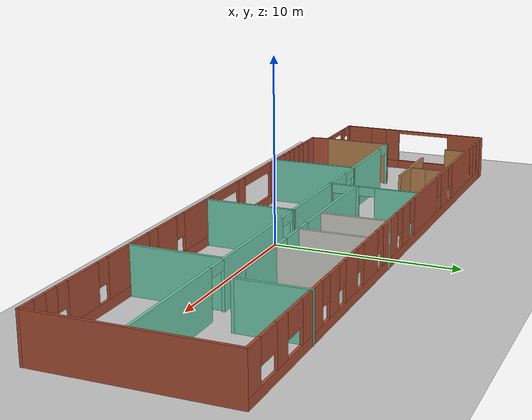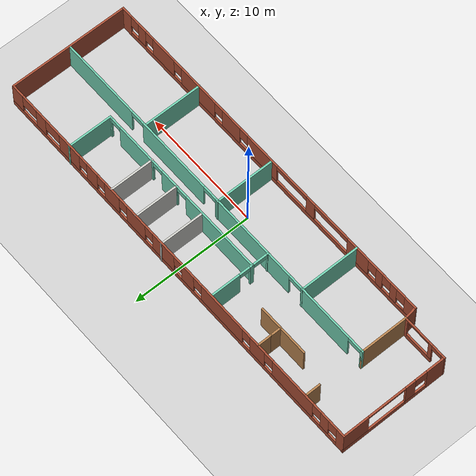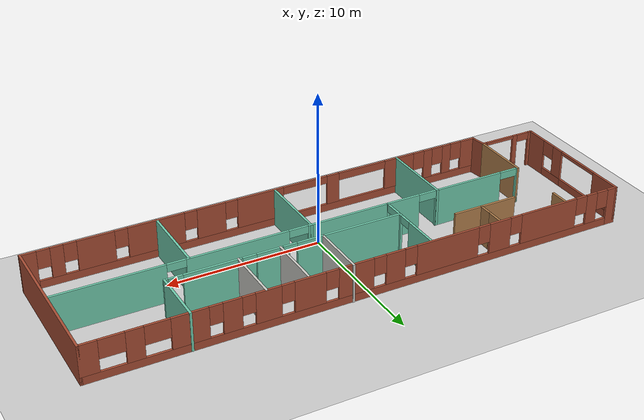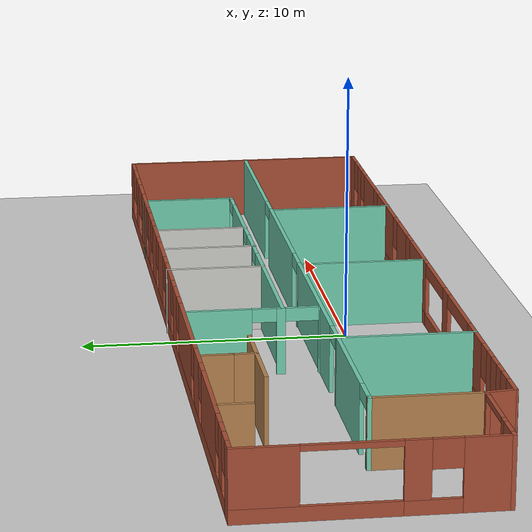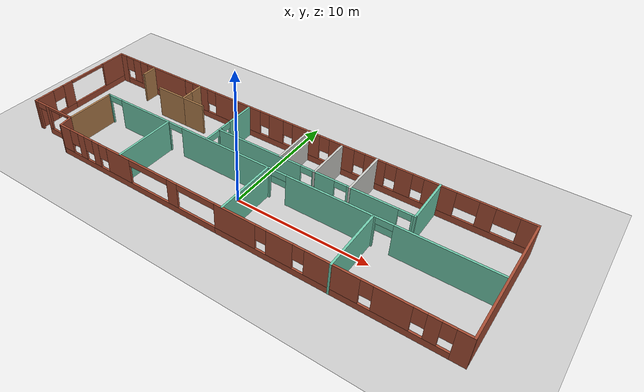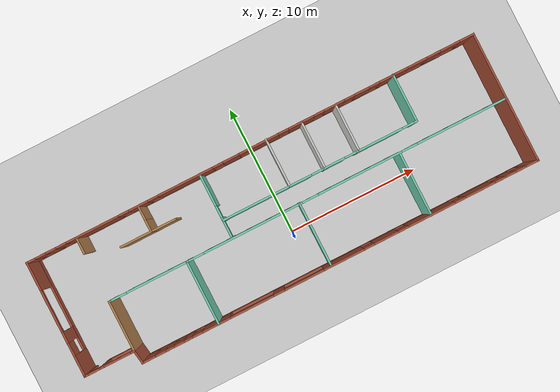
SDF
<sdf version="1.6">
 <world name="default">
  <model name="ground_plane">
   <static>1</static>
   <link name="link">
    <collision name="collision">
     <geometry><plane><normal>0 0 1</normal><size>100 100</size></plane></geometry>
     <surface><friction><ode><mu>100</mu><mu2>50</mu2></ode></friction></surface>
    </collision>
    <visual name="visual">
     <cast_shadows>0</cast_shadows>
     <geometry><plane><normal>0 0 1</normal><size>100 100</size></plane></geometry>
     <material>
      <script><uri>file://media/materials/scripts/gazebo.material</uri><name>Gazebo/Grey</name></script>
     </material>
    </visual>
   </link>
  </model>
  <model name="building_model">
   <pose>0.0184 1.65847 0 0 -0 0</pose>
   <link name="Wall_1">
    <pose>-15.5 -3.93769 0 0 -0 3.14159</pose>
    <visual name="Wall_1_Visual_0">
     <pose>-1.82542 0 1.25 0 -0 0</pose>
     <geometry><box><size>0.349165 0.15 2.5</size></box></geometry>
     <material>
      <script><uri>file://media/materials/scripts/gazebo.material</uri><name>Gazebo/Bricks</name></script>
      <ambient>1 1 1 1</ambient>
     </material>
     <meta><layer>0</layer></meta>
    </visual>
    <collision name="Wall_1_Collision_0">
     <geometry><box><size>0.349165 0.15 2.5</size></box></geometry>
     <pose>-1.82542 0 1.25 0 -0 0</pose>
    </collision>
    <visual name="Wall_1_Visual_1">
     <pose>1.83136 0 1.25 0 -0 0</pose>
     <geometry><box><size>0.337283 0.15 2.5</size></box></geometry>
     <material>
      <script><uri>file://media/materials/scripts/gazebo.material</uri><name>Gazebo/Bricks</name></script>
      <ambient>1 1 1 1</ambient>
     </material>
     <meta><layer>0</layer></meta>
    </visual>
    <collision name="Wall_1_Collision_1">
     <geometry><box><size>0.337283 0.15 2.5</size></box></geometry>
     <pose>1.83136 0 1.25 0 -0 0</pose>
    </collision>
    <visual name="Wall_1_Visual_2">
     <pose>-0.444059 0 0.25 0 -0 0</pose>
     <geometry><box><size>2.41355 0.15 0.5</size></box></geometry>
     <material>
      <script><uri>file://media/materials/scripts/gazebo.material</uri><name>Gazebo/Bricks</name></script>
      <ambient>1 1 1 1</ambient>
     </material>
     <meta><layer>0</layer></meta>
    </visual>
    <collision name="Wall_1_Collision_2">
     <geometry><box><size>2.41355 0.15 0.5</size></box></geometry>
     <pose>-0.444059 0 0.25 0 -0 0</pose>
    </collision>
    <visual name="Wall_1_Visual_3">
     <pose>0.594441 0 1.5 0 -0 0</pose>
     <geometry><box><size>0.336552 0.15 2</size></box></geometry>
     <material>
      <script><uri>file://media/materials/scripts/gazebo.material</uri><name>Gazebo/Bricks</name></script>
      <ambient>1 1 1 1</ambient>
     </material>
     <meta><layer>0</layer></meta>
    </visual>
    <collision name="Wall_1_Collision_3">
     <geometry><box><size>0.336552 0.15 2</size></box></geometry>
     <pose>0.594441 0 1.5 0 -0 0</pose>
    </collision>
    <visual name="Wall_1_Visual_4">
     <pose>1.21272 0 2.25 0 -0 0</pose>
     <geometry><box><size>0.9 0.15 0.5</size></box></geometry>
     <material>
      <script><uri>file://media/materials/scripts/gazebo.material</uri><name>Gazebo/Bricks</name></script>
      <ambient>1 1 1 1</ambient>
     </material>
     <meta><layer>0</layer></meta>
    </visual>
    <collision name="Wall_1_Collision_4">
     <geometry><box><size>0.9 0.15 0.5</size></box></geometry>
     <pose>1.21272 0 2.25 0 -0 0</pose>
    </collision>
    <visual name="Wall_1_Visual_5">
     <pose>-0.612335 0 2.4 0 -0 0</pose>
     <geometry><box><size>2.077 0.15 0.2</size></box></geometry>
     <material>
      <script><uri>file://media/materials/scripts/gazebo.material</uri><name>Gazebo/Bricks</name></script>
      <ambient>1 1 1 1</ambient>
     </material>
     <meta><layer>0</layer></meta>
    </visual>
    <collision name="Wall_1_Collision_5">
     <geometry><box><size>2.077 0.15 0.2</size></box></geometry>
     <pose>-0.612335 0 2.4 0 -0 0</pose>
    </collision>
   </link>
   <link name="Wall_10">
    <pose>1.85 -0.087691 0 0 -0 0</pose>
    <visual name="Wall_10_Visual_0">
     <pose>-15.3838 0 1.25 0 -0 0</pose>
     <geometry><box><size>0.232456 0.15 2.5</size></box></geometry>
     <material>
      <script><uri>file://media/materials/scripts/gazebo.material</uri><name>Gazebo/Grey</name></script>
      <ambient>0.435294 0.796078 0.67451 1</ambient>
     </material>
     <meta><layer>0</layer></meta>
    </visual>
    <collision name="Wall_10_Collision_0">
     <geometry><box><size>0.232456 0.15 2.5</size></box></geometry>
     <pose>-15.3838 0 1.25 0 -0 0</pose>
    </collision>
    <visual name="Wall_10_Visual_1">
     <pose>-11.6471 0 1.25 0 -0 0</pose>
     <geometry><box><size>4.84093 0.15 2.5</size></box></geometry>
     <material>
      <script><uri>file://media/materials/scripts/gazebo.material</uri><name>Gazebo/Grey</name></script>
      <ambient>0.435294 0.796078 0.67451 1</ambient>
     </material>
     <meta><layer>0</layer></meta>
    </visual>
    <collision name="Wall_10_Collision_1">
     <geometry><box><size>4.84093 0.15 2.5</size></box></geometry>
     <pose>-11.6471 0 1.25 0 -0 0</pose>
    </collision>
    <visual name="Wall_10_Visual_2">
     <pose>-4.17733 0 1.25 0 -0 0</pose>
     <geometry><box><size>7.69857 0.15 2.5</size></box></geometry>
     <material>
      <script><uri>file://media/materials/scripts/gazebo.material</uri><name>Gazebo/Grey</name></script>
      <ambient>0.435294 0.796078 0.67451 1</ambient>
     </material>
     <meta><layer>0</layer></meta>
    </visual>
    <collision name="Wall_10_Collision_2">
     <geometry><box><size>7.69857 0.15 2.5</size></box></geometry>
     <pose>-4.17733 0 1.25 0 -0 0</pose>
    </collision>
    <visual name="Wall_10_Visual_3">
     <pose>4.17858 0 1.25 0 -0 0</pose>
     <geometry><box><size>6.51326 0.15 2.5</size></box></geometry>
     <material>
      <script><uri>file://media/materials/scripts/gazebo.material</uri><name>Gazebo/Grey</name></script>
      <ambient>0.435294 0.796078 0.67451 1</ambient>
     </material>
     <meta><layer>0</layer></meta>
    </visual>
    <collision name="Wall_10_Collision_3">
     <geometry><box><size>6.51326 0.15 2.5</size></box></geometry>
     <pose>4.17858 0 1.25 0 -0 0</pose>
    </collision>
    <visual name="Wall_10_Visual_4">
     <pose>12.0676 0 1.25 0 -0 0</pose>
     <geometry><box><size>6.86479 0.15 2.5</size></box></geometry>
     <material>
      <script><uri>file://media/materials/scripts/gazebo.material</uri><name>Gazebo/Grey</name></script>
      <ambient>0.435294 0.796078 0.67451 1</ambient>
     </material>
     <meta><layer>0</layer></meta>
    </visual>
    <collision name="Wall_10_Collision_4">
     <geometry><box><size>6.86479 0.15 2.5</size></box></geometry>
     <pose>12.0676 0 1.25 0 -0 0</pose>
    </collision>
    <visual name="Wall_10_Visual_5">
     <pose>-14.6675 0 2.25 0 -0 0</pose>
     <geometry><box><size>1.2 0.15 0.5</size></box></geometry>
     <material>
      <script><uri>file://media/materials/scripts/gazebo.material</uri><name>Gazebo/Grey</name></script>
      <ambient>0.435294 0.796078 0.67451 1</ambient>
     </material>
     <meta><layer>0</layer></meta>
    </visual>
    <collision name="Wall_10_Collision_5">
     <geometry><box><size>1.2 0.15 0.5</size></box></geometry>
     <pose>-14.6675 0 2.25 0 -0 0</pose>
    </collision>
    <visual name="Wall_10_Visual_6">
     <pose>-8.62661 0 2.25 0 -0 0</pose>
     <geometry><box><size>1.2 0.15 0.5</size></box></geometry>
     <material>
      <script><uri>file://media/materials/scripts/gazebo.material</uri><name>Gazebo/Grey</name></script>
      <ambient>0.435294 0.796078 0.67451 1</ambient>
     </material>
     <meta><layer>0</layer></meta>
    </visual>
    <collision name="Wall_10_Collision_6">
     <geometry><box><size>1.2 0.15 0.5</size></box></geometry>
     <pose>-8.62661 0 2.25 0 -0 0</pose>
    </collision>
    <visual name="Wall_10_Visual_7">
     <pose>0.296954 0 2.25 0 -0 0</pose>
     <geometry><box><size>1.25 0.15 0.5</size></box></geometry>
     <material>
      <script><uri>file://media/materials/scripts/gazebo.material</uri><name>Gazebo/Grey</name></script>
      <ambient>0.435294 0.796078 0.67451 1</ambient>
     </material>
     <meta><layer>0</layer></meta>
    </visual>
    <collision name="Wall_10_Collision_7">
     <geometry><box><size>1.25 0.15 0.5</size></box></geometry>
     <pose>0.296954 0 2.25 0 -0 0</pose>
    </collision>
    <visual name="Wall_10_Visual_8">
     <pose>8.03521 0 2.25 0 -0 0</pose>
     <geometry><box><size>1.2 0.15 0.5</size></box></geometry>
     <material>
      <script><uri>file://media/materials/scripts/gazebo.material</uri><name>Gazebo/Grey</name></script>
      <ambient>0.435294 0.796078 0.67451 1</ambient>
     </material>
     <meta><layer>0</layer></meta>
    </visual>
    <collision name="Wall_10_Collision_8">
     <geometry><box><size>1.2 0.15 0.5</size></box></geometry>
     <pose>8.03521 0 2.25 0 -0 0</pose>
    </collision>
   </link>
   <link name="Wall_12">
    <collision name="Wall_12_Collision">
     <geometry><box><size>1.25 0.15 2.5</size></box></geometry>
     <pose>0 0 1.25 0 -0 0</pose>
    </collision>
    <visual name="Wall_12_Visual">
     <pose>0 0 1.25 0 -0 0</pose>
     <geometry><box><size>1.25 0.15 2.5</size></box></geometry>
     <material>
      <script><uri>file://media/materials/scripts/gazebo.material</uri><name>Gazebo/Wood</name></script>
      <ambient>1 1 1 1</ambient>
     </material>
     <meta><layer>0</layer></meta>
    </visual>
    <pose>-13.575 4.25547 0 0 -0 1.5708</pose>
   </link>
   <link name="Wall_14">
    <collision name="Wall_14_Collision">
     <geometry><box><size>1.25 0.15 2.5</size></box></geometry>
     <pose>0 0 1.25 0 -0 0</pose>
    </collision>
    <visual name="Wall_14_Visual">
     <pose>0 0 1.25 0 -0 0</pose>
     <geometry><box><size>1.25 0.15 2.5</size></box></geometry>
     <material>
      <script><uri>file://media/materials/scripts/gazebo.material</uri><name>Gazebo/Wood</name></script>
      <ambient>1 1 1 1</ambient>
     </material>
     <meta><layer>0</layer></meta>
    </visual>
    <pose>-8.74774 4.32205 0 0 0 -1.5708</pose>
   </link>
   <link name="Wall_15">
    <collision name="Wall_15_Collision">
     <geometry><box><size>1 0.15 2.5</size></box></geometry>
     <pose>0 0 1.25 0 -0 0</pose>
    </collision>
    <visual name="Wall_15_Visual">
     <pose>0 0 1.25 0 -0 0</pose>
     <geometry><box><size>1 0.15 2.5</size></box></geometry>
     <material>
      <script><uri>file://media/materials/scripts/gazebo.material</uri><name>Gazebo/Wood</name></script>
      <ambient>1 1 1 1</ambient>
     </material>
     <meta><layer>0</layer></meta>
    </visual>
    <pose>-8.74774 3.34705 0 0 0 -1.5708</pose>
   </link>
   <link name="Wall_16">
    <collision name="Wall_16_Collision">
     <geometry><box><size>2.5 0.15 2.5</size></box></geometry>
     <pose>0 0 1.25 0 -0 0</pose>
    </collision>
    <visual name="Wall_16_Visual">
     <pose>0 0 1.25 0 -0 0</pose>
     <geometry><box><size>2.5 0.15 2.5</size></box></geometry>
     <material>
      <script><uri>file://media/materials/scripts/gazebo.material</uri><name>Gazebo/Wood</name></script>
      <ambient>1 1 1 1</ambient>
     </material>
     <meta><layer>0</layer></meta>
    </visual>
    <pose>-9.92274 2.92205 0 0 -0 3.14159</pose>
   </link>
   <link name="Wall_18">
    <collision name="Wall_18_Collision">
     <geometry><box><size>2 0.15 2.5</size></box></geometry>
     <pose>0 0 1.25 0 -0 0</pose>
    </collision>
    <visual name="Wall_18_Visual">
     <pose>0 0 1.25 0 -0 0</pose>
     <geometry><box><size>2 0.15 2.5</size></box></geometry>
     <material>
      <script><uri>file://media/materials/scripts/gazebo.material</uri><name>Gazebo/Wood</name></script>
      <ambient>1 1 1 1</ambient>
     </material>
     <meta><layer>0</layer></meta>
    </visual>
    <pose>-7.82274 2.92205 0 0 -0 0</pose>
   </link>
   <link name="Wall_20">
    <pose>-3.9406 2.34911 0 0 -0 1.5708</pose>
    <visual name="Wall_20_Visual_0">
     <pose>-2.41051 0 1.25 0 -0 0</pose>
     <geometry><box><size>0.178975 0.15 2.5</size></box></geometry>
     <material>
      <script><uri>file://media/materials/scripts/gazebo.material</uri><name>Gazebo/Grey</name></script>
      <ambient>0.435294 0.796078 0.67451 1</ambient>
     </material>
     <meta><layer>0</layer></meta>
    </visual>
    <collision name="Wall_20_Collision_0">
     <geometry><box><size>0.178975 0.15 2.5</size></box></geometry>
     <pose>-2.41051 0 1.25 0 -0 0</pose>
    </collision>
    <visual name="Wall_20_Visual_1">
     <pose>-0.958717 0 1.25 0 -0 0</pose>
     <geometry><box><size>0.324616 0.15 2.5</size></box></geometry>
     <material>
      <script><uri>file://media/materials/scripts/gazebo.material</uri><name>Gazebo/Grey</name></script>
      <ambient>0.435294 0.796078 0.67451 1</ambient>
     </material>
     <meta><layer>0</layer></meta>
    </visual>
    <collision name="Wall_20_Collision_1">
     <geometry><box><size>0.324616 0.15 2.5</size></box></geometry>
     <pose>-0.958717 0 1.25 0 -0 0</pose>
    </collision>
    <visual name="Wall_20_Visual_2">
     <pose>1.3018 0 1.25 0 -0 0</pose>
     <geometry><box><size>2.39641 0.15 2.5</size></box></geometry>
     <material>
      <script><uri>file://media/materials/scripts/gazebo.material</uri><name>Gazebo/Grey</name></script>
      <ambient>0.435294 0.796078 0.67451 1</ambient>
     </material>
     <meta><layer>0</layer></meta>
    </visual>
    <collision name="Wall_20_Collision_2">
     <geometry><box><size>2.39641 0.15 2.5</size></box></geometry>
     <pose>1.3018 0 1.25 0 -0 0</pose>
    </collision>
    <visual name="Wall_20_Visual_3">
     <pose>-1.72103 0 2.25 0 -0 0</pose>
     <geometry><box><size>1.2 0.15 0.5</size></box></geometry>
     <material>
      <script><uri>file://media/materials/scripts/gazebo.material</uri><name>Gazebo/Grey</name></script>
      <ambient>0.435294 0.796078 0.67451 1</ambient>
     </material>
     <meta><layer>0</layer></meta>
    </visual>
    <collision name="Wall_20_Collision_3">
     <geometry><box><size>1.2 0.15 0.5</size></box></geometry>
     <pose>-1.72103 0 2.25 0 -0 0</pose>
    </collision>
    <visual name="Wall_20_Visual_4">
     <pose>-0.346409 0 2.25 0 -0 0</pose>
     <geometry><box><size>0.9 0.15 0.5</size></box></geometry>
     <material>
      <script><uri>file://media/materials/scripts/gazebo.material</uri><name>Gazebo/Grey</name></script>
      <ambient>0.435294 0.796078 0.67451 1</ambient>
     </material>
     <meta><layer>0</layer></meta>
    </visual>
    <collision name="Wall_20_Collision_4">
     <geometry><box><size>0.9 0.15 0.5</size></box></geometry>
     <pose>-0.346409 0 2.25 0 -0 0</pose>
    </collision>
   </link>
   <link name="Wall_22">
    <collision name="Wall_22_Collision">
     <geometry><box><size>5 0.15 2.5</size></box></geometry>
     <pose>0 0 1.25 0 -0 0</pose>
    </collision>
    <visual name="Wall_22_Visual">
     <pose>0 0 1.25 0 -0 0</pose>
     <geometry><box><size>5 0.15 2.5</size></box></geometry>
     <material>
      <script><uri>file://media/materials/scripts/gazebo.material</uri><name>Gazebo/Grey</name></script>
      <ambient>0.435294 0.796078 0.67451 1</ambient>
     </material>
     <meta><layer>0</layer></meta>
    </visual>
    <pose>-7.5007 -2.50088 0 0 0 -1.5708</pose>
   </link>
   <link name="Wall_24">
    <pose>3.62951 1.33207 0 0 -0 0</pose>
    <visual name="Wall_24_Visual_0">
     <pose>-4.14379 0 1.25 0 -0 0</pose>
     <geometry><box><size>6.96242 0.15 2.5</size></box></geometry>
     <material>
      <script><uri>file://media/materials/scripts/gazebo.material</uri><name>Gazebo/Grey</name></script>
      <ambient>0.435294 0.796078 0.67451 1</ambient>
     </material>
     <meta><layer>0</layer></meta>
    </visual>
    <collision name="Wall_24_Collision_0">
     <geometry><box><size>6.96242 0.15 2.5</size></box></geometry>
     <pose>-4.14379 0 1.25 0 -0 0</pose>
    </collision>
    <visual name="Wall_24_Visual_1">
     <pose>1.07877 0 1.25 0 -0 0</pose>
     <geometry><box><size>1.6827 0.15 2.5</size></box></geometry>
     <material>
      <script><uri>file://media/materials/scripts/gazebo.material</uri><name>Gazebo/Grey</name></script>
      <ambient>0.435294 0.796078 0.67451 1</ambient>
     </material>
     <meta><layer>0</layer></meta>
    </visual>
    <collision name="Wall_24_Collision_1">
     <geometry><box><size>1.6827 0.15 2.5</size></box></geometry>
     <pose>1.07877 0 1.25 0 -0 0</pose>
    </collision>
    <visual name="Wall_24_Visual_2">
     <pose>4.62999 0 1.25 0 -0 0</pose>
     <geometry><box><size>3.61973 0.15 2.5</size></box></geometry>
     <material>
      <script><uri>file://media/materials/scripts/gazebo.material</uri><name>Gazebo/Grey</name></script>
      <ambient>0.435294 0.796078 0.67451 1</ambient>
     </material>
     <meta><layer>0</layer></meta>
    </visual>
    <collision name="Wall_24_Collision_2">
     <geometry><box><size>3.61973 0.15 2.5</size></box></geometry>
     <pose>4.62999 0 1.25 0 -0 0</pose>
    </collision>
    <visual name="Wall_24_Visual_3">
     <pose>7.48243 0 1.25 0 -0 0</pose>
     <geometry><box><size>0.285144 0.15 2.5</size></box></geometry>
     <material>
      <script><uri>file://media/materials/scripts/gazebo.material</uri><name>Gazebo/Grey</name></script>
      <ambient>0.435294 0.796078 0.67451 1</ambient>
     </material>
     <meta><layer>0</layer></meta>
    </visual>
    <collision name="Wall_24_Collision_3">
     <geometry><box><size>0.285144 0.15 2.5</size></box></geometry>
     <pose>7.48243 0 1.25 0 -0 0</pose>
    </collision>
    <visual name="Wall_24_Visual_4">
     <pose>-0.212578 0 2.25 0 -0 0</pose>
     <geometry><box><size>0.9 0.15 0.5</size></box></geometry>
     <material>
      <script><uri>file://media/materials/scripts/gazebo.material</uri><name>Gazebo/Grey</name></script>
      <ambient>0.435294 0.796078 0.67451 1</ambient>
     </material>
     <meta><layer>0</layer></meta>
    </visual>
    <collision name="Wall_24_Collision_4">
     <geometry><box><size>0.9 0.15 0.5</size></box></geometry>
     <pose>-0.212578 0 2.25 0 -0 0</pose>
    </collision>
    <visual name="Wall_24_Visual_5">
     <pose>2.37012 0 2.25 0 -0 0</pose>
     <geometry><box><size>0.9 0.15 0.5</size></box></geometry>
     <material>
      <script><uri>file://media/materials/scripts/gazebo.material</uri><name>Gazebo/Grey</name></script>
      <ambient>0.435294 0.796078 0.67451 1</ambient>
     </material>
     <meta><layer>0</layer></meta>
    </visual>
    <collision name="Wall_24_Collision_5">
     <geometry><box><size>0.9 0.15 0.5</size></box></geometry>
     <pose>2.37012 0 2.25 0 -0 0</pose>
    </collision>
    <visual name="Wall_24_Visual_6">
     <pose>6.88986 0 2.25 0 -0 0</pose>
     <geometry><box><size>0.9 0.15 0.5</size></box></geometry>
     <material>
      <script><uri>file://media/materials/scripts/gazebo.material</uri><name>Gazebo/Grey</name></script>
      <ambient>0.435294 0.796078 0.67451 1</ambient>
     </material>
     <meta><layer>0</layer></meta>
    </visual>
    <collision name="Wall_24_Collision_6">
     <geometry><box><size>0.9 0.15 0.5</size></box></geometry>
     <pose>6.88986 0 2.25 0 -0 0</pose>
    </collision>
   </link>
   <link name="Wall_25">
    <collision name="Wall_25_Collision">
     <geometry><box><size>3.75 0.15 2.5</size></box></geometry>
     <pose>0 0 1.25 0 -0 0</pose>
    </collision>
    <visual name="Wall_25_Visual">
     <pose>0 0 1.25 0 -0 0</pose>
     <geometry><box><size>3.75 0.15 2.5</size></box></geometry>
     <material>
      <script><uri>file://media/materials/scripts/gazebo.material</uri><name>Gazebo/Grey</name></script>
      <ambient>0.435294 0.796078 0.67451 1</ambient>
     </material>
     <meta><layer>0</layer></meta>
    </visual>
    <pose>11.1795 3.13206 0 0 -0 1.5708</pose>
   </link>
   <link name="Wall_27">
    <collision name="Wall_27_Collision">
     <geometry><box><size>3.75 0.15 2.5</size></box></geometry>
     <pose>0 0 1.25 0 -0 0</pose>
    </collision>
    <visual name="Wall_27_Visual">
     <pose>0 0 1.25 0 -0 0</pose>
     <geometry><box><size>3.75 0.15 2.5</size></box></geometry>
     <material>
      <script><uri>file://media/materials/scripts/gazebo.material</uri><name>Gazebo/CeilingTiled</name></script>
      <ambient>1 1 1 1</ambient>
     </material>
     <meta><layer>0</layer></meta>
    </visual>
    <pose>1.26882 3.15218 0 0 -0 1.5708</pose>
   </link>
   <link name="Wall_29">
    <collision name="Wall_29_Collision">
     <geometry><box><size>3.75 0.15 2.5</size></box></geometry>
     <pose>0 0 1.25 0 -0 0</pose>
    </collision>
    <visual name="Wall_29_Visual">
     <pose>0 0 1.25 0 -0 0</pose>
     <geometry><box><size>3.75 0.15 2.5</size></box></geometry>
     <material>
      <script><uri>file://media/materials/scripts/gazebo.material</uri><name>Gazebo/CeilingTiled</name></script>
      <ambient>1 1 1 1</ambient>
     </material>
     <meta><layer>0</layer></meta>
    </visual>
    <pose>6.67937 3.11195 0 0 -0 1.5708</pose>
   </link>
   <link name="Wall_31">
    <collision name="Wall_31_Collision">
     <geometry><box><size>3.75 0.15 2.5</size></box></geometry>
     <pose>0 0 1.25 0 -0 0</pose>
    </collision>
    <visual name="Wall_31_Visual">
     <pose>0 0 1.25 0 -0 0</pose>
     <geometry><box><size>3.75 0.15 2.5</size></box></geometry>
     <material>
      <script><uri>file://media/materials/scripts/gazebo.material</uri><name>Gazebo/CeilingTiled</name></script>
      <ambient>1 1 1 1</ambient>
     </material>
     <meta><layer>0</layer></meta>
    </visual>
    <pose>4.02438 3.11195 0 0 -0 1.5708</pose>
   </link>
   <link name="Wall_33">
    <collision name="Wall_33_Collision">
     <geometry><box><size>5 0.15 2.5</size></box></geometry>
     <pose>0 0 1.25 0 -0 0</pose>
    </collision>
    <visual name="Wall_33_Visual">
     <pose>0 0 1.25 0 -0 0</pose>
     <geometry><box><size>5 0.15 2.5</size></box></geometry>
     <material>
      <script><uri>file://media/materials/scripts/gazebo.material</uri><name>Gazebo/Grey</name></script>
      <ambient>0.435294 0.796078 0.67451 1</ambient>
     </material>
     <meta><layer>0</layer></meta>
    </visual>
    <pose>1.30855 -2.48092 0 0 0 -1.5708</pose>
   </link>
   <link name="Wall_35">
    <collision name="Wall_35_Collision">
     <geometry><box><size>5 0.15 2.5</size></box></geometry>
     <pose>0 0 1.25 0 -0 0</pose>
    </collision>
    <visual name="Wall_35_Visual">
     <pose>0 0 1.25 0 -0 0</pose>
     <geometry><box><size>5 0.15 2.5</size></box></geometry>
     <material>
      <script><uri>file://media/materials/scripts/gazebo.material</uri><name>Gazebo/Grey</name></script>
      <ambient>0.435294 0.796078 0.67451 1</ambient>
     </material>
     <meta><layer>0</layer></meta>
    </visual>
    <pose>9.10356 -2.52718 0 0 0 -1.5708</pose>
   </link>
   <link name="Wall_4">
    <pose>-17.425 0.487309 0 0 -0 1.5708</pose>
    <visual name="Wall_4_Visual_0">
     <pose>-3.67371 0 1.25 0 -0 0</pose>
     <geometry><box><size>1.65259 0.15 2.5</size></box></geometry>
     <material>
      <script><uri>file://media/materials/scripts/gazebo.material</uri><name>Gazebo/Bricks</name></script>
      <ambient>1 1 1 1</ambient>
     </material>
     <meta><layer>0</layer></meta>
    </visual>
    <collision name="Wall_4_Collision_0">
     <geometry><box><size>1.65259 0.15 2.5</size></box></geometry>
     <pose>-3.67371 0 1.25 0 -0 0</pose>
    </collision>
    <visual name="Wall_4_Visual_1">
     <pose>-1.91303 0 0.25 0 -0 0</pose>
     <geometry><box><size>1.86877 0.15 0.5</size></box></geometry>
     <material>
      <script><uri>file://media/materials/scripts/gazebo.material</uri><name>Gazebo/Bricks</name></script>
      <ambient>1 1 1 1</ambient>
     </material>
     <meta><layer>0</layer></meta>
    </visual>
    <collision name="Wall_4_Collision_1">
     <geometry><box><size>1.86877 0.15 0.5</size></box></geometry>
     <pose>-1.91303 0 0.25 0 -0 0</pose>
    </collision>
    <visual name="Wall_4_Visual_2">
     <pose>1.76068 0 0.25 0 -0 0</pose>
     <geometry><box><size>5.47864 0.15 0.5</size></box></geometry>
     <material>
      <script><uri>file://media/materials/scripts/gazebo.material</uri><name>Gazebo/Bricks</name></script>
      <ambient>1 1 1 1</ambient>
     </material>
     <meta><layer>0</layer></meta>
    </visual>
    <collision name="Wall_4_Collision_2">
     <geometry><box><size>5.47864 0.15 0.5</size></box></geometry>
     <pose>1.76068 0 0.25 0 -0 0</pose>
    </collision>
    <visual name="Wall_4_Visual_3">
     <pose>3.38368 0 1.5 0 -0 0</pose>
     <geometry><box><size>2.23264 0.15 2</size></box></geometry>
     <material>
      <script><uri>file://media/materials/scripts/gazebo.material</uri><name>Gazebo/Bricks</name></script>
      <ambient>1 1 1 1</ambient>
     </material>
     <meta><layer>0</layer></meta>
    </visual>
    <collision name="Wall_4_Collision_3">
     <geometry><box><size>2.23264 0.15 2</size></box></geometry>
     <pose>3.38368 0 1.5 0 -0 0</pose>
    </collision>
    <visual name="Wall_4_Visual_4">
     <pose>-1.41303 0 1.5 0 -0 0</pose>
     <geometry><box><size>0.86877 0.15 2</size></box></geometry>
     <material>
      <script><uri>file://media/materials/scripts/gazebo.material</uri><name>Gazebo/Bricks</name></script>
      <ambient>1 1 1 1</ambient>
     </material>
     <meta><layer>0</layer></meta>
    </visual>
    <collision name="Wall_4_Collision_4">
     <geometry><box><size>0.86877 0.15 2</size></box></geometry>
     <pose>-1.41303 0 1.5 0 -0 0</pose>
    </collision>
    <visual name="Wall_4_Visual_5">
     <pose>-1.41303 0 1.5 0 -0 0</pose>
     <geometry><box><size>0.86877 0.15 2</size></box></geometry>
     <material>
      <script><uri>file://media/materials/scripts/gazebo.material</uri><name>Gazebo/Bricks</name></script>
      <ambient>1 1 1 1</ambient>
     </material>
     <meta><layer>0</layer></meta>
    </visual>
    <collision name="Wall_4_Collision_5">
     <geometry><box><size>0.86877 0.15 2</size></box></geometry>
     <pose>-1.41303 0 1.5 0 -0 0</pose>
    </collision>
    <visual name="Wall_4_Visual_6">
     <pose>-2.34741 0 2 0 -0 0</pose>
     <geometry><box><size>1 0.15 1</size></box></geometry>
     <material>
      <script><uri>file://media/materials/scripts/gazebo.material</uri><name>Gazebo/Bricks</name></script>
      <ambient>1 1 1 1</ambient>
     </material>
     <meta><layer>0</layer></meta>
    </visual>
    <collision name="Wall_4_Collision_6">
     <geometry><box><size>1 0.15 1</size></box></geometry>
     <pose>-2.34741 0 2 0 -0 0</pose>
    </collision>
    <visual name="Wall_4_Visual_7">
     <pose>0.644356 0 2.4 0 -0 0</pose>
     <geometry><box><size>3.246 0.15 0.2</size></box></geometry>
     <material>
      <script><uri>file://media/materials/scripts/gazebo.material</uri><name>Gazebo/Bricks</name></script>
      <ambient>1 1 1 1</ambient>
     </material>
     <meta><layer>0</layer></meta>
    </visual>
    <collision name="Wall_4_Collision_7">
     <geometry><box><size>3.246 0.15 0.2</size></box></geometry>
     <pose>0.644356 0 2.4 0 -0 0</pose>
    </collision>
    <visual name="Wall_4_Visual_8">
     <pose>0.644356 0 2.4 0 -0 0</pose>
     <geometry><box><size>3.246 0.15 0.2</size></box></geometry>
     <material>
      <script><uri>file://media/materials/scripts/gazebo.material</uri><name>Gazebo/Bricks</name></script>
      <ambient>1 1 1 1</ambient>
     </material>
     <meta><layer>0</layer></meta>
    </visual>
    <collision name="Wall_4_Collision_8">
     <geometry><box><size>3.246 0.15 0.2</size></box></geometry>
     <pose>0.644356 0 2.4 0 -0 0</pose>
    </collision>
   </link>
   <link name="Wall_5">
    <pose>0 4.91231 0 0 -0 0</pose>
    <visual name="Wall_5_Visual_0">
     <pose>-17.1316 0 1.25 0 -0 0</pose>
     <geometry><box><size>0.736763 0.15 2.5</size></box></geometry>
     <material>
      <script><uri>file://media/materials/scripts/gazebo.material</uri><name>Gazebo/Bricks</name></script>
      <ambient>1 1 1 1</ambient>
     </material>
     <meta><layer>0</layer></meta>
    </visual>
    <collision name="Wall_5_Collision_0">
     <geometry><box><size>0.736763 0.15 2.5</size></box></geometry>
     <pose>-17.1316 0 1.25 0 -0 0</pose>
    </collision>
    <visual name="Wall_5_Visual_1">
     <pose>0.368382 0 0.25 0 -0 0</pose>
     <geometry><box><size>34.2632 0.15 0.5</size></box></geometry>
     <material>
      <script><uri>file://media/materials/scripts/gazebo.material</uri><name>Gazebo/Bricks</name></script>
      <ambient>1 1 1 1</ambient>
     </material>
     <meta><layer>0</layer></meta>
    </visual>
    <collision name="Wall_5_Collision_1">
     <geometry><box><size>34.2632 0.15 0.5</size></box></geometry>
     <pose>0.368382 0 0.25 0 -0 0</pose>
    </collision>
    <visual name="Wall_5_Visual_2">
     <pose>-15.5652 0 1.5 0 -0 0</pose>
     <geometry><box><size>0.796011 0.15 2</size></box></geometry>
     <material>
      <script><uri>file://media/materials/scripts/gazebo.material</uri><name>Gazebo/Bricks</name></script>
      <ambient>1 1 1 1</ambient>
     </material>
     <meta><layer>0</layer></meta>
    </visual>
    <collision name="Wall_5_Collision_2">
     <geometry><box><size>0.796011 0.15 2</size></box></geometry>
     <pose>-15.5652 0 1.5 0 -0 0</pose>
    </collision>
    <visual name="Wall_5_Visual_3">
     <pose>-12.3269 0 1.5 0 -0 0</pose>
     <geometry><box><size>4.08056 0.15 2</size></box></geometry>
     <material>
      <script><uri>file://media/materials/scripts/gazebo.material</uri><name>Gazebo/Bricks</name></script>
      <ambient>1 1 1 1</ambient>
     </material>
     <meta><layer>0</layer></meta>
    </visual>
    <collision name="Wall_5_Collision_3">
     <geometry><box><size>4.08056 0.15 2</size></box></geometry>
     <pose>-12.3269 0 1.5 0 -0 0</pose>
    </collision>
    <visual name="Wall_5_Visual_4">
     <pose>-8.7417 0 1.5 0 -0 0</pose>
     <geometry><box><size>1.48993 0.15 2</size></box></geometry>
     <material>
      <script><uri>file://media/materials/scripts/gazebo.material</uri><name>Gazebo/Bricks</name></script>
      <ambient>1 1 1 1</ambient>
     </material>
     <meta><layer>0</layer></meta>
    </visual>
    <collision name="Wall_5_Collision_4">
     <geometry><box><size>1.48993 0.15 2</size></box></geometry>
     <pose>-8.7417 0 1.5 0 -0 0</pose>
    </collision>
    <visual name="Wall_5_Visual_5">
     <pose>-5.06393 0 1.5 0 -0 0</pose>
     <geometry><box><size>4.2656 0.15 2</size></box></geometry>
     <material>
      <script><uri>file://media/materials/scripts/gazebo.material</uri><name>Gazebo/Bricks</name></script>
      <ambient>1 1 1 1</ambient>
     </material>
     <meta><layer>0</layer></meta>
    </visual>
    <collision name="Wall_5_Collision_5">
     <geometry><box><size>4.2656 0.15 2</size></box></geometry>
     <pose>-5.06393 0 1.5 0 -0 0</pose>
    </collision>
    <visual name="Wall_5_Visual_6">
     <pose>-1.50182 0 1.5 0 -0 0</pose>
     <geometry><box><size>1.25862 0.15 2</size></box></geometry>
     <material>
      <script><uri>file://media/materials/scripts/gazebo.material</uri><name>Gazebo/Bricks</name></script>
      <ambient>1 1 1 1</ambient>
     </material>
     <meta><layer>0</layer></meta>
    </visual>
    <collision name="Wall_5_Collision_6">
     <geometry><box><size>1.25862 0.15 2</size></box></geometry>
     <pose>-1.50182 0 1.5 0 -0 0</pose>
    </collision>
    <visual name="Wall_5_Visual_7">
     <pose>1.06568 0 1.5 0 -0 0</pose>
     <geometry><box><size>2.27637 0.15 2</size></box></geometry>
     <material>
      <script><uri>file://media/materials/scripts/gazebo.material</uri><name>Gazebo/Bricks</name></script>
      <ambient>1 1 1 1</ambient>
     </material>
     <meta><layer>0</layer></meta>
    </visual>
    <collision name="Wall_5_Collision_7">
     <geometry><box><size>2.27637 0.15 2</size></box></geometry>
     <pose>1.06568 0 1.5 0 -0 0</pose>
    </collision>
    <visual name="Wall_5_Visual_8">
     <pose>3.9917 0 1.5 0 -0 0</pose>
     <geometry><box><size>1.97567 0.15 2</size></box></geometry>
     <material>
      <script><uri>file://media/materials/scripts/gazebo.material</uri><name>Gazebo/Bricks</name></script>
      <ambient>1 1 1 1</ambient>
     </material>
     <meta><layer>0</layer></meta>
    </visual>
    <collision name="Wall_5_Collision_8">
     <geometry><box><size>1.97567 0.15 2</size></box></geometry>
     <pose>3.9917 0 1.5 0 -0 0</pose>
    </collision>
    <visual name="Wall_5_Visual_9">
     <pose>6.57076 0 1.5 0 -0 0</pose>
     <geometry><box><size>1.58245 0.15 2</size></box></geometry>
     <material>
      <script><uri>file://media/materials/scripts/gazebo.material</uri><name>Gazebo/Bricks</name></script>
      <ambient>1 1 1 1</ambient>
     </material>
     <meta><layer>0</layer></meta>
    </visual>
    <collision name="Wall_5_Collision_9">
     <geometry><box><size>1.58245 0.15 2</size></box></geometry>
     <pose>6.57076 0 1.5 0 -0 0</pose>
    </collision>
    <visual name="Wall_5_Visual_10">
     <pose>8.73347 0 1.5 0 -0 0</pose>
     <geometry><box><size>1.14297 0.15 2</size></box></geometry>
     <material>
      <script><uri>file://media/materials/scripts/gazebo.material</uri><name>Gazebo/Bricks</name></script>
      <ambient>1 1 1 1</ambient>
     </material>
     <meta><layer>0</layer></meta>
    </visual>
    <collision name="Wall_5_Collision_10">
     <geometry><box><size>1.14297 0.15 2</size></box></geometry>
     <pose>8.73347 0 1.5 0 -0 0</pose>
    </collision>
    <visual name="Wall_5_Visual_11">
     <pose>11.2069 0 1.5 0 -0 0</pose>
     <geometry><box><size>2.20394 0.15 2</size></box></geometry>
     <material>
      <script><uri>file://media/materials/scripts/gazebo.material</uri><name>Gazebo/Bricks</name></script>
      <ambient>1 1 1 1</ambient>
     </material>
     <meta><layer>0</layer></meta>
    </visual>
    <collision name="Wall_5_Collision_11">
     <geometry><box><size>2.20394 0.15 2</size></box></geometry>
     <pose>11.2069 0 1.5 0 -0 0</pose>
    </collision>
    <visual name="Wall_5_Visual_12">
     <pose>14.3311 0 1.5 0 -0 0</pose>
     <geometry><box><size>1.04437 0.15 2</size></box></geometry>
     <material>
      <script><uri>file://media/materials/scripts/gazebo.material</uri><name>Gazebo/Bricks</name></script>
      <ambient>1 1 1 1</ambient>
     </material>
     <meta><layer>0</layer></meta>
    </visual>
    <collision name="Wall_5_Collision_12">
     <geometry><box><size>1.04437 0.15 2</size></box></geometry>
     <pose>14.3311 0 1.5 0 -0 0</pose>
    </collision>
    <visual name="Wall_5_Visual_13">
     <pose>16.9266 0 1.5 0 -0 0</pose>
     <geometry><box><size>1.14674 0.15 2</size></box></geometry>
     <material>
      <script><uri>file://media/materials/scripts/gazebo.material</uri><name>Gazebo/Bricks</name></script>
      <ambient>1 1 1 1</ambient>
     </material>
     <meta><layer>0</layer></meta>
    </visual>
    <collision name="Wall_5_Collision_13">
     <geometry><box><size>1.14674 0.15 2</size></box></geometry>
     <pose>16.9266 0 1.5 0 -0 0</pose>
    </collision>
    <visual name="Wall_5_Visual_14">
     <pose>-16.3632 0 1.9 0 -0 0</pose>
     <geometry><box><size>0.8 0.15 1.2</size></box></geometry>
     <material>
      <script><uri>file://media/materials/scripts/gazebo.material</uri><name>Gazebo/Bricks</name></script>
      <ambient>1 1 1 1</ambient>
     </material>
     <meta><layer>0</layer></meta>
    </visual>
    <collision name="Wall_5_Collision_14">
     <geometry><box><size>0.8 0.15 1.2</size></box></geometry>
     <pose>-16.3632 0 1.9 0 -0 0</pose>
    </collision>
    <visual name="Wall_5_Visual_15">
     <pose>-14.7672 0 1.9 0 -0 0</pose>
     <geometry><box><size>0.8 0.15 1.2</size></box></geometry>
     <material>
      <script><uri>file://media/materials/scripts/gazebo.material</uri><name>Gazebo/Bricks</name></script>
      <ambient>1 1 1 1</ambient>
     </material>
     <meta><layer>0</layer></meta>
    </visual>
    <collision name="Wall_5_Collision_15">
     <geometry><box><size>0.8 0.15 1.2</size></box></geometry>
     <pose>-14.7672 0 1.9 0 -0 0</pose>
    </collision>
    <visual name="Wall_5_Visual_16">
     <pose>-9.88667 0 1.9 0 -0 0</pose>
     <geometry><box><size>0.8 0.15 1.2</size></box></geometry>
     <material>
      <script><uri>file://media/materials/scripts/gazebo.material</uri><name>Gazebo/Bricks</name></script>
      <ambient>1 1 1 1</ambient>
     </material>
     <meta><layer>0</layer></meta>
    </visual>
    <collision name="Wall_5_Collision_16">
     <geometry><box><size>0.8 0.15 1.2</size></box></geometry>
     <pose>-9.88667 0 1.9 0 -0 0</pose>
    </collision>
    <visual name="Wall_5_Visual_17">
     <pose>-7.59674 0 1.9 0 -0 0</pose>
     <geometry><box><size>0.8 0.15 1.2</size></box></geometry>
     <material>
      <script><uri>file://media/materials/scripts/gazebo.material</uri><name>Gazebo/Bricks</name></script>
      <ambient>1 1 1 1</ambient>
     </material>
     <meta><layer>0</layer></meta>
    </visual>
    <collision name="Wall_5_Collision_17">
     <geometry><box><size>0.8 0.15 1.2</size></box></geometry>
     <pose>-7.59674 0 1.9 0 -0 0</pose>
    </collision>
    <visual name="Wall_5_Visual_18">
     <pose>-2.53113 0 1.9 0 -0 0</pose>
     <geometry><box><size>0.8 0.15 1.2</size></box></geometry>
     <material>
      <script><uri>file://media/materials/scripts/gazebo.material</uri><name>Gazebo/Bricks</name></script>
      <ambient>1 1 1 1</ambient>
     </material>
     <meta><layer>0</layer></meta>
    </visual>
    <collision name="Wall_5_Collision_18">
     <geometry><box><size>0.8 0.15 1.2</size></box></geometry>
     <pose>-2.53113 0 1.9 0 -0 0</pose>
    </collision>
    <visual name="Wall_5_Visual_19">
     <pose>-0.47251 0 1.9 0 -0 0</pose>
     <geometry><box><size>0.8 0.15 1.2</size></box></geometry>
     <material>
      <script><uri>file://media/materials/scripts/gazebo.material</uri><name>Gazebo/Bricks</name></script>
      <ambient>1 1 1 1</ambient>
     </material>
     <meta><layer>0</layer></meta>
    </visual>
    <collision name="Wall_5_Collision_19">
     <geometry><box><size>0.8 0.15 1.2</size></box></geometry>
     <pose>-0.47251 0 1.9 0 -0 0</pose>
    </collision>
    <visual name="Wall_5_Visual_20">
     <pose>2.60386 0 1.9 0 -0 0</pose>
     <geometry><box><size>0.8 0.15 1.2</size></box></geometry>
     <material>
      <script><uri>file://media/materials/scripts/gazebo.material</uri><name>Gazebo/Bricks</name></script>
      <ambient>1 1 1 1</ambient>
     </material>
     <meta><layer>0</layer></meta>
    </visual>
    <collision name="Wall_5_Collision_20">
     <geometry><box><size>0.8 0.15 1.2</size></box></geometry>
     <pose>2.60386 0 1.9 0 -0 0</pose>
    </collision>
    <visual name="Wall_5_Visual_21">
     <pose>5.37953 0 1.9 0 -0 0</pose>
     <geometry><box><size>0.8 0.15 1.2</size></box></geometry>
     <material>
      <script><uri>file://media/materials/scripts/gazebo.material</uri><name>Gazebo/Bricks</name></script>
      <ambient>1 1 1 1</ambient>
     </material>
     <meta><layer>0</layer></meta>
    </visual>
    <collision name="Wall_5_Collision_21">
     <geometry><box><size>0.8 0.15 1.2</size></box></geometry>
     <pose>5.37953 0 1.9 0 -0 0</pose>
    </collision>
    <visual name="Wall_5_Visual_22">
     <pose>7.76199 0 1.9 0 -0 0</pose>
     <geometry><box><size>0.8 0.15 1.2</size></box></geometry>
     <material>
      <script><uri>file://media/materials/scripts/gazebo.material</uri><name>Gazebo/Bricks</name></script>
      <ambient>1 1 1 1</ambient>
     </material>
     <meta><layer>0</layer></meta>
    </visual>
    <collision name="Wall_5_Collision_22">
     <geometry><box><size>0.8 0.15 1.2</size></box></geometry>
     <pose>7.76199 0 1.9 0 -0 0</pose>
    </collision>
    <visual name="Wall_5_Visual_23">
     <pose>9.70496 0 1.9 0 -0 0</pose>
     <geometry><box><size>0.8 0.15 1.2</size></box></geometry>
     <material>
      <script><uri>file://media/materials/scripts/gazebo.material</uri><name>Gazebo/Bricks</name></script>
      <ambient>1 1 1 1</ambient>
     </material>
     <meta><layer>0</layer></meta>
    </visual>
    <collision name="Wall_5_Collision_23">
     <geometry><box><size>0.8 0.15 1.2</size></box></geometry>
     <pose>9.70496 0 1.9 0 -0 0</pose>
    </collision>
    <visual name="Wall_5_Visual_24">
     <pose>13.0589 0 1.9 0 -0 0</pose>
     <geometry><box><size>1.5 0.15 1.2</size></box></geometry>
     <material>
      <script><uri>file://media/materials/scripts/gazebo.material</uri><name>Gazebo/Bricks</name></script>
      <ambient>1 1 1 1</ambient>
     </material>
     <meta><layer>0</layer></meta>
    </visual>
    <collision name="Wall_5_Collision_24">
     <geometry><box><size>1.5 0.15 1.2</size></box></geometry>
     <pose>13.0589 0 1.9 0 -0 0</pose>
    </collision>
    <visual name="Wall_5_Visual_25">
     <pose>15.6033 0 1.9 0 -0 0</pose>
     <geometry><box><size>1.5 0.15 1.2</size></box></geometry>
     <material>
      <script><uri>file://media/materials/scripts/gazebo.material</uri><name>Gazebo/Bricks</name></script>
      <ambient>1 1 1 1</ambient>
     </material>
     <meta><layer>0</layer></meta>
    </visual>
    <collision name="Wall_5_Collision_25">
     <geometry><box><size>1.5 0.15 1.2</size></box></geometry>
     <pose>15.6033 0 1.9 0 -0 0</pose>
    </collision>
   </link>
   <link name="Wall_6">
    <collision name="Wall_6_Collision">
     <geometry><box><size>10 0.15 2.5</size></box></geometry>
     <pose>0 0 1.25 0 -0 0</pose>
    </collision>
    <visual name="Wall_6_Visual">
     <pose>0 0 1.25 0 -0 0</pose>
     <geometry><box><size>10 0.15 2.5</size></box></geometry>
     <material>
      <script><uri>file://media/materials/scripts/gazebo.material</uri><name>Gazebo/Bricks</name></script>
      <ambient>1 1 1 1</ambient>
     </material>
     <meta><layer>0</layer></meta>
    </visual>
    <pose>17.425 -0.012691 0 0 0 -1.5708</pose>
   </link>
   <link name="Wall_7">
    <pose>2 -4.93769 0 0 -0 3.14159</pose>
    <visual name="Wall_7_Visual_0">
     <pose>-14.9945 0 1.25 0 -0 0</pose>
     <geometry><box><size>1.011 0.15 2.5</size></box></geometry>
     <material>
      <script><uri>file://media/materials/scripts/gazebo.material</uri><name>Gazebo/Bricks</name></script>
      <ambient>1 1 1 1</ambient>
     </material>
     <meta><layer>0</layer></meta>
    </visual>
    <collision name="Wall_7_Collision_0">
     <geometry><box><size>1.011 0.15 2.5</size></box></geometry>
     <pose>-14.9945 0 1.25 0 -0 0</pose>
    </collision>
    <visual name="Wall_7_Visual_1">
     <pose>-6.60655 0 0.25 0 -0 0</pose>
     <geometry><box><size>15.7649 0.15 0.5</size></box></geometry>
     <material>
      <script><uri>file://media/materials/scripts/gazebo.material</uri><name>Gazebo/Bricks</name></script>
      <ambient>1 1 1 1</ambient>
     </material>
     <meta><layer>0</layer></meta>
    </visual>
    <collision name="Wall_7_Collision_1">
     <geometry><box><size>15.7649 0.15 0.5</size></box></geometry>
     <pose>-6.60655 0 0.25 0 -0 0</pose>
    </collision>
    <visual name="Wall_7_Visual_2">
     <pose>8.38795 0 0.25 0 -0 0</pose>
     <geometry><box><size>14.2241 0.15 0.5</size></box></geometry>
     <material>
      <script><uri>file://media/materials/scripts/gazebo.material</uri><name>Gazebo/Bricks</name></script>
      <ambient>1 1 1 1</ambient>
     </material>
     <meta><layer>0</layer></meta>
    </visual>
    <collision name="Wall_7_Collision_2">
     <geometry><box><size>14.2241 0.15 0.5</size></box></geometry>
     <pose>8.38795 0 0.25 0 -0 0</pose>
    </collision>
    <visual name="Wall_7_Visual_3">
     <pose>4.7796 0 1.5 0 -0 0</pose>
     <geometry><box><size>0.856246 0.15 2</size></box></geometry>
     <material>
      <script><uri>file://media/materials/scripts/gazebo.material</uri><name>Gazebo/Bricks</name></script>
      <ambient>1 1 1 1</ambient>
     </material>
     <meta><layer>0</layer></meta>
    </visual>
    <collision name="Wall_7_Collision_3">
     <geometry><box><size>0.856246 0.15 2</size></box></geometry>
     <pose>4.7796 0 1.5 0 -0 0</pose>
    </collision>
    <visual name="Wall_7_Visual_4">
     <pose>9.66524 0 1.5 0 -0 0</pose>
     <geometry><box><size>2.1625 0.15 2</size></box></geometry>
     <material>
      <script><uri>file://media/materials/scripts/gazebo.material</uri><name>Gazebo/Bricks</name></script>
      <ambient>1 1 1 1</ambient>
     </material>
     <meta><layer>0</layer></meta>
    </visual>
    <collision name="Wall_7_Collision_4">
     <geometry><box><size>2.1625 0.15 2</size></box></geometry>
     <pose>9.66524 0 1.5 0 -0 0</pose>
    </collision>
    <visual name="Wall_7_Visual_5">
     <pose>11.8635 0 1.5 0 -0 0</pose>
     <geometry><box><size>0.634098 0.15 2</size></box></geometry>
     <material>
      <script><uri>file://media/materials/scripts/gazebo.material</uri><name>Gazebo/Bricks</name></script>
      <ambient>1 1 1 1</ambient>
     </material>
     <meta><layer>0</layer></meta>
    </visual>
    <collision name="Wall_7_Collision_5">
     <geometry><box><size>0.634098 0.15 2</size></box></geometry>
     <pose>11.8635 0 1.5 0 -0 0</pose>
    </collision>
    <visual name="Wall_7_Visual_6">
     <pose>13.2976 0 1.5 0 -0 0</pose>
     <geometry><box><size>0.634098 0.15 2</size></box></geometry>
     <material>
      <script><uri>file://media/materials/scripts/gazebo.material</uri><name>Gazebo/Bricks</name></script>
      <ambient>1 1 1 1</ambient>
     </material>
     <meta><layer>0</layer></meta>
    </visual>
    <collision name="Wall_7_Collision_6">
     <geometry><box><size>0.634098 0.15 2</size></box></geometry>
     <pose>13.2976 0 1.5 0 -0 0</pose>
    </collision>
    <visual name="Wall_7_Visual_7">
     <pose>14.9573 0 1.5 0 -0 0</pose>
     <geometry><box><size>1.08532 0.15 2</size></box></geometry>
     <material>
      <script><uri>file://media/materials/scripts/gazebo.material</uri><name>Gazebo/Bricks</name></script>
      <ambient>1 1 1 1</ambient>
     </material>
     <meta><layer>0</layer></meta>
    </visual>
    <collision name="Wall_7_Collision_7">
     <geometry><box><size>1.08532 0.15 2</size></box></geometry>
     <pose>14.9573 0 1.5 0 -0 0</pose>
    </collision>
    <visual name="Wall_7_Visual_8">
     <pose>11.1465 0 0.5 0 -0 0</pose>
     <geometry><box><size>0.8 0.15 0</size></box></geometry>
     <material>
      <script><uri>file://media/materials/scripts/gazebo.material</uri><name>Gazebo/Bricks</name></script>
      <ambient>1 1 1 1</ambient>
     </material>
     <meta><layer>0</layer></meta>
    </visual>
    <collision name="Wall_7_Collision_8">
     <geometry><box><size>0.8 0.15 0</size></box></geometry>
     <pose>11.1465 0 0.5 0 -0 0</pose>
    </collision>
    <visual name="Wall_7_Visual_9">
     <pose>12.5806 0 0.5 0 -0 0</pose>
     <geometry><box><size>0.8 0.15 0</size></box></geometry>
     <material>
      <script><uri>file://media/materials/scripts/gazebo.material</uri><name>Gazebo/Bricks</name></script>
      <ambient>1 1 1 1</ambient>
     </material>
     <meta><layer>0</layer></meta>
    </visual>
    <collision name="Wall_7_Collision_9">
     <geometry><box><size>0.8 0.15 0</size></box></geometry>
     <pose>12.5806 0 0.5 0 -0 0</pose>
    </collision>
    <visual name="Wall_7_Visual_10">
     <pose>14.0147 0 0.5 0 -0 0</pose>
     <geometry><box><size>0.8 0.15 0</size></box></geometry>
     <material>
      <script><uri>file://media/materials/scripts/gazebo.material</uri><name>Gazebo/Bricks</name></script>
      <ambient>1 1 1 1</ambient>
     </material>
     <meta><layer>0</layer></meta>
    </visual>
    <collision name="Wall_7_Collision_10">
     <geometry><box><size>0.8 0.15 0</size></box></geometry>
     <pose>14.0147 0 0.5 0 -0 0</pose>
    </collision>
    <visual name="Wall_7_Visual_11">
     <pose>-13.291 0 1.5 0 -0 0</pose>
     <geometry><box><size>0.796012 0.15 2</size></box></geometry>
     <material>
      <script><uri>file://media/materials/scripts/gazebo.material</uri><name>Gazebo/Bricks</name></script>
      <ambient>1 1 1 1</ambient>
     </material>
     <meta><layer>0</layer></meta>
    </visual>
    <collision name="Wall_7_Collision_11">
     <geometry><box><size>0.796012 0.15 2</size></box></geometry>
     <pose>-13.291 0 1.5 0 -0 0</pose>
    </collision>
    <visual name="Wall_7_Visual_12">
     <pose>-10.9317 0 1.5 0 -0 0</pose>
     <geometry><box><size>2.32263 0.15 2</size></box></geometry>
     <material>
      <script><uri>file://media/materials/scripts/gazebo.material</uri><name>Gazebo/Bricks</name></script>
      <ambient>1 1 1 1</ambient>
     </material>
     <meta><layer>0</layer></meta>
    </visual>
    <collision name="Wall_7_Collision_12">
     <geometry><box><size>2.32263 0.15 2</size></box></geometry>
     <pose>-10.9317 0 1.5 0 -0 0</pose>
    </collision>
    <visual name="Wall_7_Visual_13">
     <pose>-7.16139 0 1.5 0 -0 0</pose>
     <geometry><box><size>3.61795 0.15 2</size></box></geometry>
     <material>
      <script><uri>file://media/materials/scripts/gazebo.material</uri><name>Gazebo/Bricks</name></script>
      <ambient>1 1 1 1</ambient>
     </material>
     <meta><layer>0</layer></meta>
    </visual>
    <collision name="Wall_7_Collision_13">
     <geometry><box><size>3.61795 0.15 2</size></box></geometry>
     <pose>-7.16139 0 1.5 0 -0 0</pose>
    </collision>
    <visual name="Wall_7_Visual_14">
     <pose>-3.61084 0 1.5 0 -0 0</pose>
     <geometry><box><size>1.88315 0.15 2</size></box></geometry>
     <material>
      <script><uri>file://media/materials/scripts/gazebo.material</uri><name>Gazebo/Bricks</name></script>
      <ambient>1 1 1 1</ambient>
     </material>
     <meta><layer>0</layer></meta>
    </visual>
    <collision name="Wall_7_Collision_14">
     <geometry><box><size>1.88315 0.15 2</size></box></geometry>
     <pose>-3.61084 0 1.5 0 -0 0</pose>
    </collision>
    <visual name="Wall_7_Visual_15">
     <pose>-0.296682 0 1.5 0 -0 0</pose>
     <geometry><box><size>3.14516 0.15 2</size></box></geometry>
     <material>
      <script><uri>file://media/materials/scripts/gazebo.material</uri><name>Gazebo/Bricks</name></script>
      <ambient>1 1 1 1</ambient>
     </material>
     <meta><layer>0</layer></meta>
    </visual>
    <collision name="Wall_7_Collision_15">
     <geometry><box><size>3.14516 0.15 2</size></box></geometry>
     <pose>-0.296682 0 1.5 0 -0 0</pose>
    </collision>
    <visual name="Wall_7_Visual_16">
     <pose>-0.296682 0 1.5 0 -0 0</pose>
     <geometry><box><size>3.14516 0.15 2</size></box></geometry>
     <material>
      <script><uri>file://media/materials/scripts/gazebo.material</uri><name>Gazebo/Bricks</name></script>
      <ambient>1 1 1 1</ambient>
     </material>
     <meta><layer>0</layer></meta>
    </visual>
    <collision name="Wall_7_Collision_16">
     <geometry><box><size>3.14516 0.15 2</size></box></geometry>
     <pose>-0.296682 0 1.5 0 -0 0</pose>
    </collision>
    <visual name="Wall_7_Visual_17">
     <pose>-14.089 0 1.9 0 -0 0</pose>
     <geometry><box><size>0.8 0.15 1.2</size></box></geometry>
     <material>
      <script><uri>file://media/materials/scripts/gazebo.material</uri><name>Gazebo/Bricks</name></script>
      <ambient>1 1 1 1</ambient>
     </material>
     <meta><layer>0</layer></meta>
    </visual>
    <collision name="Wall_7_Collision_17">
     <geometry><box><size>0.8 0.15 1.2</size></box></geometry>
     <pose>-14.089 0 1.9 0 -0 0</pose>
    </collision>
    <visual name="Wall_7_Visual_18">
     <pose>11.1465 0 1.9 0 -0 0</pose>
     <geometry><box><size>0.8 0.15 1.2</size></box></geometry>
     <material>
      <script><uri>file://media/materials/scripts/gazebo.material</uri><name>Gazebo/Bricks</name></script>
      <ambient>1 1 1 1</ambient>
     </material>
     <meta><layer>0</layer></meta>
    </visual>
    <collision name="Wall_7_Collision_18">
     <geometry><box><size>0.8 0.15 1.2</size></box></geometry>
     <pose>11.1465 0 1.9 0 -0 0</pose>
    </collision>
    <visual name="Wall_7_Visual_19">
     <pose>12.5806 0 1.9 0 -0 0</pose>
     <geometry><box><size>0.8 0.15 1.2</size></box></geometry>
     <material>
      <script><uri>file://media/materials/scripts/gazebo.material</uri><name>Gazebo/Bricks</name></script>
      <ambient>1 1 1 1</ambient>
     </material>
     <meta><layer>0</layer></meta>
    </visual>
    <collision name="Wall_7_Collision_19">
     <geometry><box><size>0.8 0.15 1.2</size></box></geometry>
     <pose>12.5806 0 1.9 0 -0 0</pose>
    </collision>
    <visual name="Wall_7_Visual_20">
     <pose>14.0147 0 1.9 0 -0 0</pose>
     <geometry><box><size>0.8 0.15 1.2</size></box></geometry>
     <material>
      <script><uri>file://media/materials/scripts/gazebo.material</uri><name>Gazebo/Bricks</name></script>
      <ambient>1 1 1 1</ambient>
     </material>
     <meta><layer>0</layer></meta>
    </visual>
    <collision name="Wall_7_Collision_20">
     <geometry><box><size>0.8 0.15 1.2</size></box></geometry>
     <pose>14.0147 0 1.9 0 -0 0</pose>
    </collision>
    <visual name="Wall_7_Visual_21">
     <pose>-12.493 0 1.9 0 -0 0</pose>
     <geometry><box><size>0.8 0.15 1.2</size></box></geometry>
     <material>
      <script><uri>file://media/materials/scripts/gazebo.material</uri><name>Gazebo/Bricks</name></script>
      <ambient>1 1 1 1</ambient>
     </material>
     <meta><layer>0</layer></meta>
    </visual>
    <collision name="Wall_7_Collision_21">
     <geometry><box><size>0.8 0.15 1.2</size></box></geometry>
     <pose>-12.493 0 1.9 0 -0 0</pose>
    </collision>
    <visual name="Wall_7_Visual_22">
     <pose>-9.37036 0 1.9 0 -0 0</pose>
     <geometry><box><size>0.8 0.15 1.2</size></box></geometry>
     <material>
      <script><uri>file://media/materials/scripts/gazebo.material</uri><name>Gazebo/Bricks</name></script>
      <ambient>1 1 1 1</ambient>
     </material>
     <meta><layer>0</layer></meta>
    </visual>
    <collision name="Wall_7_Collision_22">
     <geometry><box><size>0.8 0.15 1.2</size></box></geometry>
     <pose>-9.37036 0 1.9 0 -0 0</pose>
    </collision>
    <visual name="Wall_7_Visual_23">
     <pose>-4.95242 0 1.9 0 -0 0</pose>
     <geometry><box><size>0.8 0.15 1.2</size></box></geometry>
     <material>
      <script><uri>file://media/materials/scripts/gazebo.material</uri><name>Gazebo/Bricks</name></script>
      <ambient>1 1 1 1</ambient>
     </material>
     <meta><layer>0</layer></meta>
    </visual>
    <collision name="Wall_7_Collision_23">
     <geometry><box><size>0.8 0.15 1.2</size></box></geometry>
     <pose>-4.95242 0 1.9 0 -0 0</pose>
    </collision>
    <visual name="Wall_7_Visual_24">
     <pose>-2.26926 0 1.9 0 -0 0</pose>
     <geometry><box><size>0.8 0.15 1.2</size></box></geometry>
     <material>
      <script><uri>file://media/materials/scripts/gazebo.material</uri><name>Gazebo/Bricks</name></script>
      <ambient>1 1 1 1</ambient>
     </material>
     <meta><layer>0</layer></meta>
    </visual>
    <collision name="Wall_7_Collision_24">
     <geometry><box><size>0.8 0.15 1.2</size></box></geometry>
     <pose>-2.26926 0 1.9 0 -0 0</pose>
    </collision>
    <visual name="Wall_7_Visual_25">
     <pose>6.89585 0 2.25 0 -0 0</pose>
     <geometry><box><size>3.37627 0.15 0.5</size></box></geometry>
     <material>
      <script><uri>file://media/materials/scripts/gazebo.material</uri><name>Gazebo/Bricks</name></script>
      <ambient>1 1 1 1</ambient>
     </material>
     <meta><layer>0</layer></meta>
    </visual>
    <collision name="Wall_7_Collision_25">
     <geometry><box><size>3.37627 0.15 0.5</size></box></geometry>
     <pose>6.89585 0 2.25 0 -0 0</pose>
    </collision>
    <visual name="Wall_7_Visual_26">
     <pose>2.81369 0 2.25 0 -0 0</pose>
     <geometry><box><size>3.07557 0.15 0.5</size></box></geometry>
     <material>
      <script><uri>file://media/materials/scripts/gazebo.material</uri><name>Gazebo/Bricks</name></script>
      <ambient>1 1 1 1</ambient>
     </material>
     <meta><layer>0</layer></meta>
    </visual>
    <collision name="Wall_7_Collision_26">
     <geometry><box><size>3.07557 0.15 0.5</size></box></geometry>
     <pose>2.81369 0 2.25 0 -0 0</pose>
    </collision>
    <visual name="Wall_7_Visual_27">
     <pose>2.81369 0 2.25 0 -0 0</pose>
     <geometry><box><size>3.07557 0.15 0.5</size></box></geometry>
     <material>
      <script><uri>file://media/materials/scripts/gazebo.material</uri><name>Gazebo/Bricks</name></script>
      <ambient>1 1 1 1</ambient>
     </material>
     <meta><layer>0</layer></meta>
    </visual>
    <collision name="Wall_7_Collision_27">
     <geometry><box><size>3.07557 0.15 0.5</size></box></geometry>
     <pose>2.81369 0 2.25 0 -0 0</pose>
    </collision>
   </link>
   <link name="Wall_8">
    <collision name="Wall_8_Collision">
     <geometry><box><size>1.16119 0.15 2.5</size></box></geometry>
     <pose>0 0 1.25 0 -0 0</pose>
    </collision>
    <visual name="Wall_8_Visual">
     <pose>0 0 1.25 0 -0 0</pose>
     <geometry><box><size>1.16119 0.15 2.5</size></box></geometry>
     <material>
      <script><uri>file://media/materials/scripts/gazebo.material</uri><name>Gazebo/Bricks</name></script>
      <ambient>1 1 1 1</ambient>
     </material>
     <meta><layer>0</layer></meta>
    </visual>
    <pose>-13.5 -4.43769 0 0 -0 1.71969</pose>
   </link>
   <link name="Wall_9">
    <collision name="Wall_9_Collision">
     <geometry><box><size>4 0.15 2.5</size></box></geometry>
     <pose>0 0 1.25 0 -0 0</pose>
    </collision>
    <visual name="Wall_9_Visual">
     <pose>0 0 1.25 0 -0 0</pose>
     <geometry><box><size>4 0.15 2.5</size></box></geometry>
     <material>
      <script><uri>file://media/materials/scripts/gazebo.material</uri><name>Gazebo/Wood</name></script>
      <ambient>0.435294 0.796078 0.67451 1</ambient>
     </material>
     <meta><layer>0</layer></meta>
    </visual>
    <pose>-13.575 -2.01269 0 0 -0 1.5708</pose>
   </link>
   <static>1</static>
  </model>
 </world>
</sdf>
